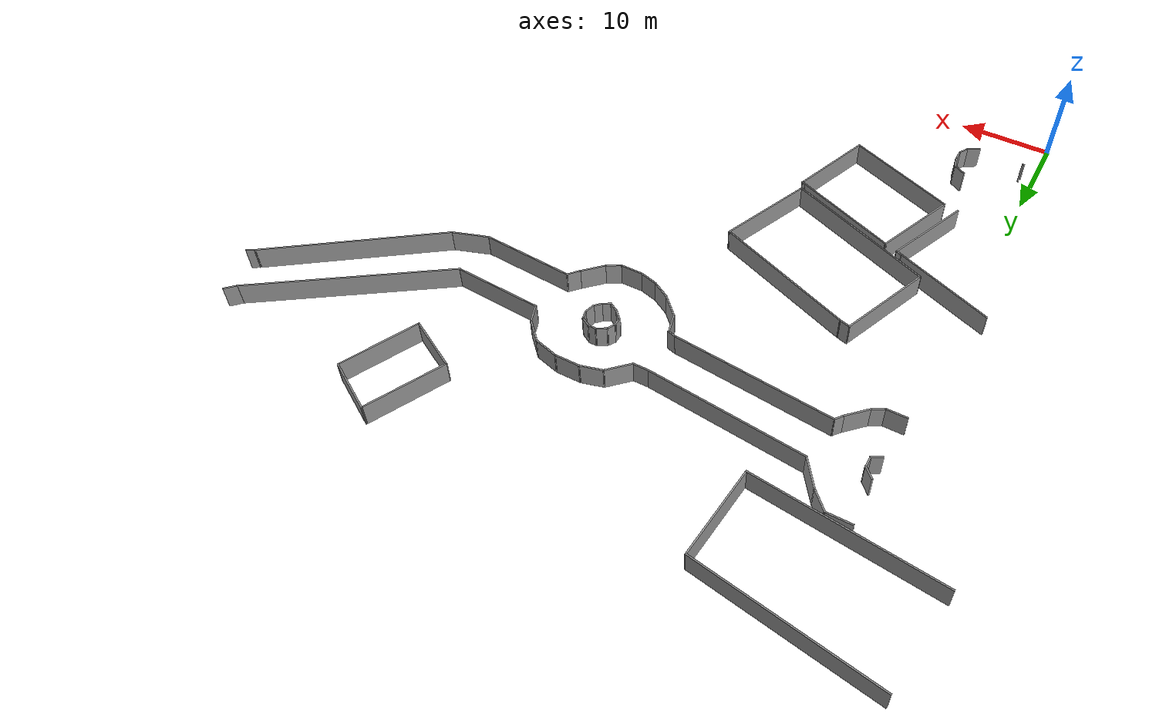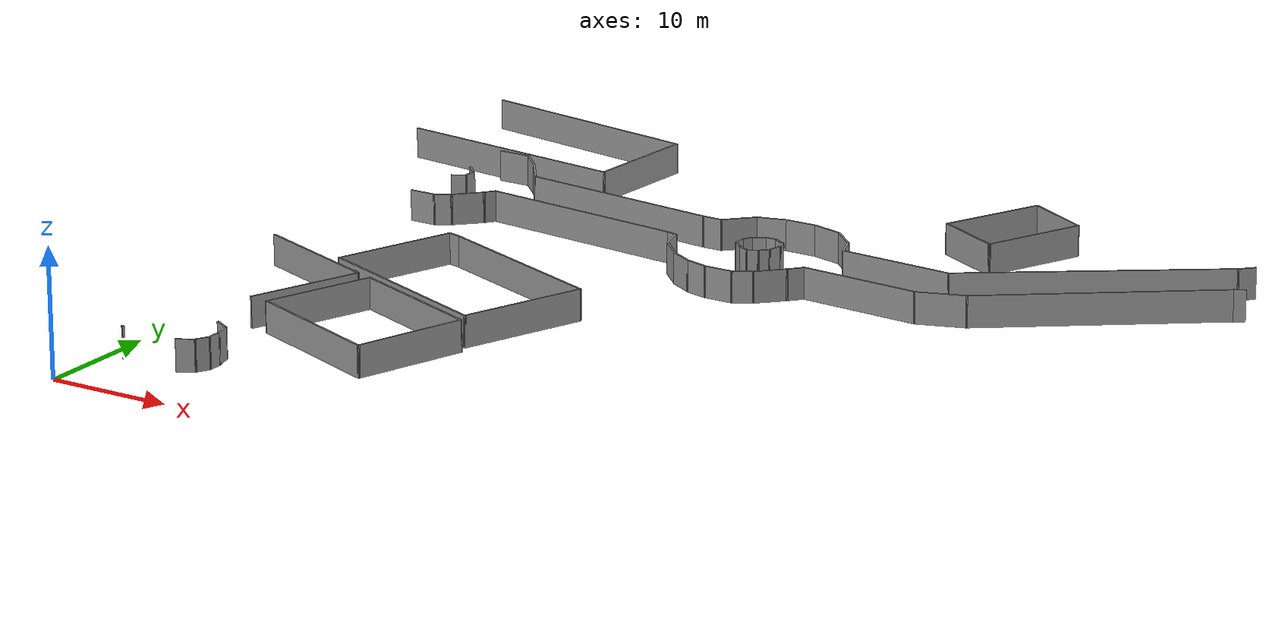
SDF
<sdf version="1.6">
 <model name="palazzo2">
  <pose>-3.81107 -3.99805 0 0 -0 0</pose>
  <link name="Wall_1">
   <collision name="Wall_1_Collision">
    <geometry><box><size>1.5 0.15 2.5</size></box></geometry>
    <pose>0 0 1.25 0 -0 0</pose>
   </collision>
   <visual name="Wall_1_Visual">
    <pose>0 0 1.25 0 -0 0</pose>
    <geometry><box><size>1.5 0.15 2.5</size></box></geometry>
    <material>
     <script><uri>file://media/materials/scripts/gazebo.material</uri><name>Gazebo/Grey</name></script>
     <ambient>1 1 1 1</ambient>
    </material>
    <meta><layer>0</layer></meta>
   </visual>
   <pose>68.1139 65.5916 0 0 -0 -2.35619</pose>
  </link>
  <link name="Wall_100">
   <collision name="Wall_100_Collision">
    <geometry><box><size>1.5 0.15 2.5</size></box></geometry>
    <pose>0 0 1.25 0 -0 0</pose>
   </collision>
   <visual name="Wall_100_Visual">
    <pose>0 0 1.25 0 -0 0</pose>
    <geometry><box><size>1.5 0.15 2.5</size></box></geometry>
    <material>
     <script><uri>file://media/materials/scripts/gazebo.material</uri><name>Gazebo/Grey</name></script>
     <ambient>1 1 1 1</ambient>
    </material>
    <meta><layer>0</layer></meta>
   </visual>
   <pose>4.68181 55.6213 0 0 -0 -0.785398</pose>
  </link>
  <link name="Wall_101">
   <collision name="Wall_101_Collision">
    <geometry><box><size>1.25 0.15 2.5</size></box></geometry>
    <pose>0 0 1.25 0 -0 0</pose>
   </collision>
   <visual name="Wall_101_Visual">
    <pose>0 0 1.25 0 -0 0</pose>
    <geometry><box><size>1.25 0.15 2.5</size></box></geometry>
    <material>
     <script><uri>file://media/materials/scripts/gazebo.material</uri><name>Gazebo/Grey</name></script>
     <ambient>1 1 1 1</ambient>
    </material>
    <meta><layer>0</layer></meta>
   </visual>
   <pose>5.15911 54.594 0 0 -0 -1.5708</pose>
  </link>
  <link name="Wall_102">
   <collision name="Wall_102_Collision">
    <geometry><box><size>1.25 0.15 2.5</size></box></geometry>
    <pose>0 0 1.25 0 -0 0</pose>
   </collision>
   <visual name="Wall_102_Visual">
    <pose>0 0 1.25 0 -0 0</pose>
    <geometry><box><size>1.25 0.15 2.5</size></box></geometry>
    <material>
     <script><uri>file://media/materials/scripts/gazebo.material</uri><name>Gazebo/Grey</name></script>
     <ambient>1 1 1 1</ambient>
    </material>
    <meta><layer>0</layer></meta>
   </visual>
   <pose>4.68279 53.769 0 0 -0 -2.61799</pose>
  </link>
  <link name="Wall_124">
   <collision name="Wall_124_Collision">
    <geometry><box><size>1.5 0.15 2.5</size></box></geometry>
    <pose>0 0 1.25 0 -0 0</pose>
   </collision>
   <visual name="Wall_124_Visual">
    <pose>0 0 1.25 0 -0 0</pose>
    <geometry><box><size>1.5 0.15 2.5</size></box></geometry>
    <material>
     <script><uri>file://media/materials/scripts/gazebo.material</uri><name>Gazebo/Grey</name></script>
     <ambient>1 1 1 1</ambient>
    </material>
    <meta><layer>0</layer></meta>
   </visual>
   <pose>11.0494 14.3562 0 0 -0 -0.523599</pose>
  </link>
  <link name="Wall_125">
   <collision name="Wall_125_Collision">
    <geometry><box><size>1.5 0.15 2.5</size></box></geometry>
    <pose>0 0 1.25 0 -0 0</pose>
   </collision>
   <visual name="Wall_125_Visual">
    <pose>0 0 1.25 0 -0 0</pose>
    <geometry><box><size>1.5 0.15 2.5</size></box></geometry>
    <material>
     <script><uri>file://media/materials/scripts/gazebo.material</uri><name>Gazebo/Grey</name></script>
     <ambient>1 1 1 1</ambient>
    </material>
    <meta><layer>0</layer></meta>
   </visual>
   <pose>11.8087 13.3667 0 0 -0 -1.309</pose>
  </link>
  <link name="Wall_126">
   <collision name="Wall_126_Collision">
    <geometry><box><size>1.25 0.15 2.5</size></box></geometry>
    <pose>0 0 1.25 0 -0 0</pose>
   </collision>
   <visual name="Wall_126_Visual">
    <pose>0 0 1.25 0 -0 0</pose>
    <geometry><box><size>1.25 0.15 2.5</size></box></geometry>
    <material>
     <script><uri>file://media/materials/scripts/gazebo.material</uri><name>Gazebo/Grey</name></script>
     <ambient>1 1 1 1</ambient>
    </material>
    <meta><layer>0</layer></meta>
   </visual>
   <pose>11.9834 12.1647 0 0 -0 -1.5708</pose>
  </link>
  <link name="Wall_127">
   <collision name="Wall_127_Collision">
    <geometry><box><size>1.25 0.15 2.5</size></box></geometry>
    <pose>0 0 1.25 0 -0 0</pose>
   </collision>
   <visual name="Wall_127_Visual">
    <pose>0 0 1.25 0 -0 0</pose>
    <geometry><box><size>1.25 0.15 2.5</size></box></geometry>
    <material>
     <script><uri>file://media/materials/scripts/gazebo.material</uri><name>Gazebo/Grey</name></script>
     <ambient>1 1 1 1</ambient>
    </material>
    <meta><layer>0</layer></meta>
   </visual>
   <pose>11.7084 11.1384 0 0 -0 -2.0944</pose>
  </link>
  <link name="Wall_128">
   <collision name="Wall_128_Collision">
    <geometry><box><size>1.5 0.15 2.5</size></box></geometry>
    <pose>0 0 1.25 0 -0 0</pose>
   </collision>
   <visual name="Wall_128_Visual">
    <pose>0 0 1.25 0 -0 0</pose>
    <geometry><box><size>1.5 0.15 2.5</size></box></geometry>
    <material>
     <script><uri>file://media/materials/scripts/gazebo.material</uri><name>Gazebo/Grey</name></script>
     <ambient>1 1 1 1</ambient>
    </material>
    <meta><layer>0</layer></meta>
   </visual>
   <pose>10.8488 10.3245 0 0 -0 -2.61799</pose>
  </link>
  <link name="Wall_18">
   <collision name="Wall_18_Collision">
    <geometry><box><size>9.55157 0.15 2.5</size></box></geometry>
    <pose>0 0 1.25 0 -0 0</pose>
   </collision>
   <visual name="Wall_18_Visual">
    <pose>0 0 1.25 0 -0 0</pose>
    <geometry><box><size>9.55157 0.15 2.5</size></box></geometry>
    <material>
     <script><uri>file://media/materials/scripts/gazebo.material</uri><name>Gazebo/Grey</name></script>
     <ambient>1 1 1 1</ambient>
    </material>
    <meta><layer>0</layer></meta>
   </visual>
   <pose>45.0865 52.931 0 0 -0 -0.058124</pose>
  </link>
  <link name="Wall_21">
   <collision name="Wall_21_Collision">
    <geometry><box><size>4.05836 0.15 2.5</size></box></geometry>
    <pose>0 0 1.25 0 -0 0</pose>
   </collision>
   <visual name="Wall_21_Visual">
    <pose>0 0 1.25 0 -0 0</pose>
    <geometry><box><size>4.05836 0.15 2.5</size></box></geometry>
    <material>
     <script><uri>file://media/materials/scripts/gazebo.material</uri><name>Gazebo/Grey</name></script>
     <ambient>1 1 1 1</ambient>
    </material>
    <meta><layer>0</layer></meta>
   </visual>
   <pose>51.6505 48.1268 0 0 -0 0.326661</pose>
  </link>
  <link name="Wall_23">
   <collision name="Wall_23_Collision">
    <geometry><box><size>9.9805 0.15 2.5</size></box></geometry>
    <pose>0 0 1.25 0 -0 0</pose>
   </collision>
   <visual name="Wall_23_Visual">
    <pose>0 0 1.25 0 -0 0</pose>
    <geometry><box><size>9.9805 0.15 2.5</size></box></geometry>
    <material>
     <script><uri>file://media/materials/scripts/gazebo.material</uri><name>Gazebo/Grey</name></script>
     <ambient>1 1 1 1</ambient>
    </material>
    <meta><layer>0</layer></meta>
   </visual>
   <pose>44.8944 47.8133 0 0 -0 -0.063831</pose>
  </link>
  <link name="Wall_25">
   <collision name="Wall_25_Collision">
    <geometry><box><size>3 0.15 2.5</size></box></geometry>
    <pose>0 0 1.25 0 -0 0</pose>
   </collision>
   <visual name="Wall_25_Visual">
    <pose>0 0 1.25 0 -0 0</pose>
    <geometry><box><size>3 0.15 2.5</size></box></geometry>
    <material>
     <script><uri>file://media/materials/scripts/gazebo.material</uri><name>Gazebo/Grey</name></script>
     <ambient>1 1 1 1</ambient>
    </material>
    <meta><layer>0</layer></meta>
   </visual>
   <pose>29.5276 55.9108 0 0 -0 0.785398</pose>
  </link>
  <link name="Wall_26">
   <collision name="Wall_26_Collision">
    <geometry><box><size>2.5 0.15 2.5</size></box></geometry>
    <pose>0 0 1.25 0 -0 0</pose>
   </collision>
   <visual name="Wall_26_Visual">
    <pose>0 0 1.25 0 -0 0</pose>
    <geometry><box><size>2.5 0.15 2.5</size></box></geometry>
    <material>
     <script><uri>file://media/materials/scripts/gazebo.material</uri><name>Gazebo/Grey</name></script>
     <ambient>1 1 1 1</ambient>
    </material>
    <meta><layer>0</layer></meta>
   </visual>
   <pose>31.6702 57.2225 0 0 -0 0.261799</pose>
  </link>
  <link name="Wall_27">
   <collision name="Wall_27_Collision">
    <geometry><box><size>2.75 0.15 2.5</size></box></geometry>
    <pose>0 0 1.25 0 -0 0</pose>
   </collision>
   <visual name="Wall_27_Visual">
    <pose>0 0 1.25 0 -0 0</pose>
    <geometry><box><size>2.75 0.15 2.5</size></box></geometry>
    <material>
     <script><uri>file://media/materials/scripts/gazebo.material</uri><name>Gazebo/Grey</name></script>
     <ambient>1 1 1 1</ambient>
    </material>
    <meta><layer>0</layer></meta>
   </visual>
   <pose>34.1052 57.5266 0 0 -0 0</pose>
  </link>
  <link name="Wall_28">
   <collision name="Wall_28_Collision">
    <geometry><box><size>2.75 0.15 2.5</size></box></geometry>
    <pose>0 0 1.25 0 -0 0</pose>
   </collision>
   <visual name="Wall_28_Visual">
    <pose>0 0 1.25 0 -0 0</pose>
    <geometry><box><size>2.75 0.15 2.5</size></box></geometry>
    <material>
     <script><uri>file://media/materials/scripts/gazebo.material</uri><name>Gazebo/Grey</name></script>
     <ambient>1 1 1 1</ambient>
    </material>
    <meta><layer>0</layer></meta>
   </visual>
   <pose>36.6609 57.1902 0 0 -0 -0.261799</pose>
  </link>
  <link name="Wall_29">
   <collision name="Wall_29_Collision">
    <geometry><box><size>2.75 0.15 2.5</size></box></geometry>
    <pose>0 0 1.25 0 -0 0</pose>
   </collision>
   <visual name="Wall_29_Visual">
    <pose>0 0 1.25 0 -0 0</pose>
    <geometry><box><size>2.75 0.15 2.5</size></box></geometry>
    <material>
     <script><uri>file://media/materials/scripts/gazebo.material</uri><name>Gazebo/Grey</name></script>
     <ambient>1 1 1 1</ambient>
    </material>
    <meta><layer>0</layer></meta>
   </visual>
   <pose>38.8358 55.9345 0 0 -0 -0.785398</pose>
  </link>
  <link name="Wall_3">
   <collision name="Wall_3_Collision">
    <geometry><box><size>21.9226 0.15 2.5</size></box></geometry>
    <pose>0 0 1.25 0 -0 0</pose>
   </collision>
   <visual name="Wall_3_Visual">
    <pose>0 0 1.25 0 -0 0</pose>
    <geometry><box><size>21.9226 0.15 2.5</size></box></geometry>
    <material>
     <script><uri>file://media/materials/scripts/gazebo.material</uri><name>Gazebo/Grey</name></script>
     <ambient>1 1 1 1</ambient>
    </material>
    <meta><layer>0</layer></meta>
   </visual>
   <pose>58.708 58.8861 0 0 -0 0.609084</pose>
  </link>
  <link name="Wall_30">
   <collision name="Wall_30_Collision">
    <geometry><box><size>2.0705 0.15 2.5</size></box></geometry>
    <pose>0 0 1.25 0 -0 0</pose>
   </collision>
   <visual name="Wall_30_Visual">
    <pose>0 0 1.25 0 -0 0</pose>
    <geometry><box><size>2.0705 0.15 2.5</size></box></geometry>
    <material>
     <script><uri>file://media/materials/scripts/gazebo.material</uri><name>Gazebo/Grey</name></script>
     <ambient>1 1 1 1</ambient>
    </material>
    <meta><layer>0</layer></meta>
   </visual>
   <pose>40.0744 54.1096 0 0 -0 -1.2318</pose>
  </link>
  <link name="Wall_32">
   <collision name="Wall_32_Collision">
    <geometry><box><size>2.25 0.15 2.5</size></box></geometry>
    <pose>0 0 1.25 0 -0 0</pose>
   </collision>
   <visual name="Wall_32_Visual">
    <pose>0 0 1.25 0 -0 0</pose>
    <geometry><box><size>2.25 0.15 2.5</size></box></geometry>
    <material>
     <script><uri>file://media/materials/scripts/gazebo.material</uri><name>Gazebo/Grey</name></script>
     <ambient>1 1 1 1</ambient>
    </material>
    <meta><layer>0</layer></meta>
   </visual>
   <pose>27.7803 48.832 0 0 -0 -1.309</pose>
  </link>
  <link name="Wall_325">
   <collision name="Wall_325_Collision">
    <geometry><box><size>6 0.15 2.5</size></box></geometry>
    <pose>0 0 1.25 0 -0 0</pose>
   </collision>
   <visual name="Wall_325_Visual">
    <pose>0 0 1.25 0 -0 0</pose>
    <geometry><box><size>6 0.15 2.5</size></box></geometry>
    <material>
     <script><uri>file://media/materials/scripts/gazebo.material</uri><name>Gazebo/Grey</name></script>
     <ambient>1 1 1 1</ambient>
    </material>
    <meta><layer>0</layer></meta>
   </visual>
   <pose>50.0012 69.687 0 0 -0 -0.523599</pose>
  </link>
  <link name="Wall_327">
   <collision name="Wall_327_Collision">
    <geometry><box><size>8.8258 0.15 2.5</size></box></geometry>
    <pose>0 0 1.25 0 -0 0</pose>
   </collision>
   <visual name="Wall_327_Visual">
    <pose>0 0 1.25 0 -0 0</pose>
    <geometry><box><size>8.8258 0.15 2.5</size></box></geometry>
    <material>
     <script><uri>file://media/materials/scripts/gazebo.material</uri><name>Gazebo/Grey</name></script>
     <ambient>1 1 1 1</ambient>
    </material>
    <meta><layer>0</layer></meta>
   </visual>
   <pose>45.6102 67.2296 0 0 -0 1.12817</pose>
  </link>
  <link name="Wall_329">
   <collision name="Wall_329_Collision">
    <geometry><box><size>6.08381 0.15 2.5</size></box></geometry>
    <pose>0 0 1.25 0 -0 0</pose>
   </collision>
   <visual name="Wall_329_Visual">
    <pose>0 0 1.25 0 -0 0</pose>
    <geometry><box><size>6.08381 0.15 2.5</size></box></geometry>
    <material>
     <script><uri>file://media/materials/scripts/gazebo.material</uri><name>Gazebo/Grey</name></script>
     <ambient>1 1 1 1</ambient>
    </material>
    <meta><layer>0</layer></meta>
   </visual>
   <pose>46.3654 61.905 0 0 -0 2.64834</pose>
  </link>
  <link name="Wall_33">
   <collision name="Wall_33_Collision">
    <geometry><box><size>2.75 0.15 2.5</size></box></geometry>
    <pose>0 0 1.25 0 -0 0</pose>
   </collision>
   <visual name="Wall_33_Visual">
    <pose>0 0 1.25 0 -0 0</pose>
    <geometry><box><size>2.75 0.15 2.5</size></box></geometry>
    <material>
     <script><uri>file://media/materials/scripts/gazebo.material</uri><name>Gazebo/Grey</name></script>
     <ambient>1 1 1 1</ambient>
    </material>
    <meta><layer>0</layer></meta>
   </visual>
   <pose>28.9713 46.8985 0 0 -0 -0.785398</pose>
  </link>
  <link name="Wall_332">
   <collision name="Wall_332_Collision">
    <geometry><box><size>8.65344 0.15 2.5</size></box></geometry>
    <pose>0 0 1.25 0 -0 0</pose>
   </collision>
   <visual name="Wall_332_Visual">
    <pose>0 0 1.25 0 -0 0</pose>
    <geometry><box><size>8.65344 0.15 2.5</size></box></geometry>
    <material>
     <script><uri>file://media/materials/scripts/gazebo.material</uri><name>Gazebo/Grey</name></script>
     <ambient>1 1 1 1</ambient>
    </material>
    <meta><layer>0</layer></meta>
   </visual>
   <pose>50.7565 64.3623 0 0 -0 1.13939</pose>
  </link>
  <link name="Wall_34">
   <collision name="Wall_34_Collision">
    <geometry><box><size>2.25 0.15 2.5</size></box></geometry>
    <pose>0 0 1.25 0 -0 0</pose>
   </collision>
   <visual name="Wall_34_Visual">
    <pose>0 0 1.25 0 -0 0</pose>
    <geometry><box><size>2.25 0.15 2.5</size></box></geometry>
    <material>
     <script><uri>file://media/materials/scripts/gazebo.material</uri><name>Gazebo/Grey</name></script>
     <ambient>1 1 1 1</ambient>
    </material>
    <meta><layer>0</layer></meta>
   </visual>
   <pose>30.7999 45.4543 0 0 -0 -0.523599</pose>
  </link>
  <link name="Wall_341">
   <collision name="Wall_341_Collision">
    <geometry><box><size>19.8692 0.15 2.5</size></box></geometry>
    <pose>0 0 1.25 0 -0 0</pose>
   </collision>
   <visual name="Wall_341_Visual">
    <pose>0 0 1.25 0 -0 0</pose>
    <geometry><box><size>19.8692 0.15 2.5</size></box></geometry>
    <material>
     <script><uri>file://media/materials/scripts/gazebo.material</uri><name>Gazebo/Grey</name></script>
     <ambient>1 1 1 1</ambient>
    </material>
    <meta><layer>0</layer></meta>
   </visual>
   <pose>4.20985 61.7033 0 0 -0 3.0284</pose>
  </link>
  <link name="Wall_347">
   <collision name="Wall_347_Collision">
    <geometry><box><size>19.517 0.15 2.5</size></box></geometry>
    <pose>0 0 1.25 0 -0 0</pose>
   </collision>
   <visual name="Wall_347_Visual">
    <pose>0 0 1.25 0 -0 0</pose>
    <geometry><box><size>19.517 0.15 2.5</size></box></geometry>
    <material>
     <script><uri>file://media/materials/scripts/gazebo.material</uri><name>Gazebo/Grey</name></script>
     <ambient>1 1 1 1</ambient>
    </material>
    <meta><layer>0</layer></meta>
   </visual>
   <pose>5.20547 71.8202 0 0 -0 2.98006</pose>
  </link>
  <link name="Wall_349">
   <collision name="Wall_349_Collision">
    <geometry><box><size>9.8526 0.15 2.5</size></box></geometry>
    <pose>0 0 1.25 0 -0 0</pose>
   </collision>
   <visual name="Wall_349_Visual">
    <pose>0 0 1.25 0 -0 0</pose>
    <geometry><box><size>9.8526 0.15 2.5</size></box></geometry>
    <material>
     <script><uri>file://media/materials/scripts/gazebo.material</uri><name>Gazebo/Grey</name></script>
     <ambient>1 1 1 1</ambient>
    </material>
    <meta><layer>0</layer></meta>
   </visual>
   <pose>14.3846 65.4262 0 0 -0 1.49274</pose>
  </link>
  <link name="Wall_35">
   <collision name="Wall_35_Collision">
    <geometry><box><size>2 0.15 2.5</size></box></geometry>
    <pose>0 0 1.25 0 -0 0</pose>
   </collision>
   <visual name="Wall_35_Visual">
    <pose>0 0 1.25 0 -0 0</pose>
    <geometry><box><size>2 0.15 2.5</size></box></geometry>
    <material>
     <script><uri>file://media/materials/scripts/gazebo.material</uri><name>Gazebo/Grey</name></script>
     <ambient>1 1 1 1</ambient>
    </material>
    <meta><layer>0</layer></meta>
   </visual>
   <pose>32.6027 44.6899 0 0 -0 -0.261799</pose>
  </link>
  <link name="Wall_36">
   <collision name="Wall_36_Collision">
    <geometry><box><size>2.5 0.15 2.5</size></box></geometry>
    <pose>0 0 1.25 0 -0 0</pose>
   </collision>
   <visual name="Wall_36_Visual">
    <pose>0 0 1.25 0 -0 0</pose>
    <geometry><box><size>2.5 0.15 2.5</size></box></geometry>
    <material>
     <script><uri>file://media/materials/scripts/gazebo.material</uri><name>Gazebo/Grey</name></script>
     <ambient>1 1 1 1</ambient>
    </material>
    <meta><layer>0</layer></meta>
   </visual>
   <pose>34.6712 44.4505 0 0 -0 0</pose>
  </link>
  <link name="Wall_37">
   <collision name="Wall_37_Collision">
    <geometry><box><size>1.75 0.15 2.5</size></box></geometry>
    <pose>0 0 1.25 0 -0 0</pose>
   </collision>
   <visual name="Wall_37_Visual">
    <pose>0 0 1.25 0 -0 0</pose>
    <geometry><box><size>1.75 0.15 2.5</size></box></geometry>
    <material>
     <script><uri>file://media/materials/scripts/gazebo.material</uri><name>Gazebo/Grey</name></script>
     <ambient>1 1 1 1</ambient>
    </material>
    <meta><layer>0</layer></meta>
   </visual>
   <pose>36.539 44.8505 0 0 -0 0.523599</pose>
  </link>
  <link name="Wall_38">
   <collision name="Wall_38_Collision">
    <geometry><box><size>2.75 0.15 2.5</size></box></geometry>
    <pose>0 0 1.25 0 -0 0</pose>
   </collision>
   <visual name="Wall_38_Visual">
    <pose>0 0 1.25 0 -0 0</pose>
    <geometry><box><size>2.75 0.15 2.5</size></box></geometry>
    <material>
     <script><uri>file://media/materials/scripts/gazebo.material</uri><name>Gazebo/Grey</name></script>
     <ambient>1 1 1 1</ambient>
    </material>
    <meta><layer>0</layer></meta>
   </visual>
   <pose>38.1511 46.1697 0 0 -0 0.785398</pose>
  </link>
  <link name="Wall_39">
   <collision name="Wall_39_Collision">
    <geometry><box><size>1.53616 0.15 2.5</size></box></geometry>
    <pose>0 0 1.25 0 -0 0</pose>
   </collision>
   <visual name="Wall_39_Visual">
    <pose>0 0 1.25 0 -0 0</pose>
    <geometry><box><size>1.53616 0.15 2.5</size></box></geometry>
    <material>
     <script><uri>file://media/materials/scripts/gazebo.material</uri><name>Gazebo/Grey</name></script>
     <ambient>1 1 1 1</ambient>
    </material>
    <meta><layer>0</layer></meta>
   </visual>
   <pose>39.5297 47.6079 0 0 -0 0.846182</pose>
  </link>
  <link name="Wall_41">
   <collision name="Wall_41_Collision">
    <geometry><box><size>1 0.15 2.5</size></box></geometry>
    <pose>0 0 1.25 0 -0 0</pose>
   </collision>
   <visual name="Wall_41_Visual">
    <pose>0 0 1.25 0 -0 0</pose>
    <geometry><box><size>1 0.15 2.5</size></box></geometry>
    <material>
     <script><uri>file://media/materials/scripts/gazebo.material</uri><name>Gazebo/Grey</name></script>
     <ambient>1 1 1 1</ambient>
    </material>
    <meta><layer>0</layer></meta>
   </visual>
   <pose>27.0981 49.9562 0 0 -0 2.87979</pose>
  </link>
  <link name="Wall_417">
   <collision name="Wall_417_Collision">
    <geometry><box><size>1.25 0.15 2.5</size></box></geometry>
    <pose>0 0 1.25 0 -0 0</pose>
   </collision>
   <visual name="Wall_417_Visual">
    <pose>0 0 1.25 0 -0 0</pose>
    <geometry><box><size>1.25 0.15 2.5</size></box></geometry>
    <material>
     <script><uri>file://media/materials/scripts/gazebo.material</uri><name>Gazebo/Grey</name></script>
     <ambient>1 1 1 1</ambient>
    </material>
    <meta><layer>0</layer></meta>
   </visual>
   <pose>13.2181 40.7993 0 0 -0 -0.261799</pose>
  </link>
  <link name="Wall_419">
   <collision name="Wall_419_Collision">
    <geometry><box><size>16.0278 0.15 2.5</size></box></geometry>
    <pose>0 0 1.25 0 -0 0</pose>
   </collision>
   <visual name="Wall_419_Visual">
    <pose>0 0 1.25 0 -0 0</pose>
    <geometry><box><size>16.0278 0.15 2.5</size></box></geometry>
    <material>
     <script><uri>file://media/materials/scripts/gazebo.material</uri><name>Gazebo/Grey</name></script>
     <ambient>1 1 1 1</ambient>
    </material>
    <meta><layer>0</layer></meta>
   </visual>
   <pose>21.1487 37.7803 0 0 -0 2.7708</pose>
  </link>
  <link name="Wall_421">
   <collision name="Wall_421_Collision">
    <geometry><box><size>10.4423 0.15 2.5</size></box></geometry>
    <pose>0 0 1.25 0 -0 0</pose>
   </collision>
   <visual name="Wall_421_Visual">
    <pose>0 0 1.25 0 -0 0</pose>
    <geometry><box><size>10.4423 0.15 2.5</size></box></geometry>
    <material>
     <script><uri>file://media/materials/scripts/gazebo.material</uri><name>Gazebo/Grey</name></script>
     <ambient>1 1 1 1</ambient>
    </material>
    <meta><layer>0</layer></meta>
   </visual>
   <pose>26.6706 30.1121 0 0 -0 1.19734</pose>
  </link>
  <link name="Wall_423">
   <collision name="Wall_423_Collision">
    <geometry><box><size>10.2519 0.15 2.5</size></box></geometry>
    <pose>0 0 1.25 0 -0 0</pose>
   </collision>
   <visual name="Wall_423_Visual">
    <pose>0 0 1.25 0 -0 0</pose>
    <geometry><box><size>10.2519 0.15 2.5</size></box></geometry>
    <material>
     <script><uri>file://media/materials/scripts/gazebo.material</uri><name>Gazebo/Grey</name></script>
     <ambient>1 1 1 1</ambient>
    </material>
    <meta><layer>0</layer></meta>
   </visual>
   <pose>10.8916 36.2205 0 0 -0 1.20743</pose>
  </link>
  <link name="Wall_425">
   <collision name="Wall_425_Collision">
    <geometry><box><size>17.0189 0.15 2.5</size></box></geometry>
    <pose>0 0 1.25 0 -0 0</pose>
   </collision>
   <visual name="Wall_425_Visual">
    <pose>0 0 1.25 0 -0 0</pose>
    <geometry><box><size>17.0189 0.15 2.5</size></box></geometry>
    <material>
     <script><uri>file://media/materials/scripts/gazebo.material</uri><name>Gazebo/Grey</name></script>
     <ambient>1 1 1 1</ambient>
    </material>
    <meta><layer>0</layer></meta>
   </visual>
   <pose>16.9447 28.41 0 0 -0 2.76659</pose>
  </link>
  <link name="Wall_427">
   <collision name="Wall_427_Collision">
    <geometry><box><size>0.75 0.15 2.5</size></box></geometry>
    <pose>0 0 1.25 0 -0 0</pose>
   </collision>
   <visual name="Wall_427_Visual">
    <pose>0 0 1.25 0 -0 0</pose>
    <geometry><box><size>0.75 0.15 2.5</size></box></geometry>
    <material>
     <script><uri>file://media/materials/scripts/gazebo.material</uri><name>Gazebo/Grey</name></script>
     <ambient>1 1 1 1</ambient>
    </material>
    <meta><layer>0</layer></meta>
   </visual>
   <pose>12.1757 29.4233 0 0 -0 2.61799</pose>
  </link>
  <link name="Wall_429">
   <collision name="Wall_429_Collision">
    <geometry><box><size>11.8007 0.15 2.5</size></box></geometry>
    <pose>0 0 1.25 0 -0 0</pose>
   </collision>
   <visual name="Wall_429_Visual">
    <pose>0 0 1.25 0 -0 0</pose>
    <geometry><box><size>11.8007 0.15 2.5</size></box></geometry>
    <material>
     <script><uri>file://media/materials/scripts/gazebo.material</uri><name>Gazebo/Grey</name></script>
     <ambient>1 1 1 1</ambient>
    </material>
    <meta><layer>0</layer></meta>
   </visual>
   <pose>7.00663 31.3858 0 0 -0 -0.371093</pose>
  </link>
  <link name="Wall_43">
   <collision name="Wall_43_Collision">
    <geometry><box><size>17.3574 0.15 2.5</size></box></geometry>
    <pose>0 0 1.25 0 -0 0</pose>
   </collision>
   <visual name="Wall_43_Visual">
    <pose>0 0 1.25 0 -0 0</pose>
    <geometry><box><size>17.3574 0.15 2.5</size></box></geometry>
    <material>
     <script><uri>file://media/materials/scripts/gazebo.material</uri><name>Gazebo/Grey</name></script>
     <ambient>1 1 1 1</ambient>
    </material>
    <meta><layer>0</layer></meta>
   </visual>
   <pose>18.127 50.9271 0 0 -0 -0.100234</pose>
  </link>
  <link name="Wall_433">
   <collision name="Wall_433_Collision">
    <geometry><box><size>9.45089 0.15 2.5</size></box></geometry>
    <pose>0 0 1.25 0 -0 0</pose>
   </collision>
   <visual name="Wall_433_Visual">
    <pose>0 0 1.25 0 -0 0</pose>
    <geometry><box><size>9.45089 0.15 2.5</size></box></geometry>
    <material>
     <script><uri>file://media/materials/scripts/gazebo.material</uri><name>Gazebo/Grey</name></script>
     <ambient>1 1 1 1</ambient>
    </material>
    <meta><layer>0</layer></meta>
   </visual>
   <pose>10.7319 24.9461 0 0 -0 1.19573</pose>
  </link>
  <link name="Wall_437">
   <collision name="Wall_437_Collision">
    <geometry><box><size>0.5 0.15 2.5</size></box></geometry>
    <pose>0 0 1.25 0 -0 0</pose>
   </collision>
   <visual name="Wall_437_Visual">
    <pose>0 0 1.25 0 -0 0</pose>
    <geometry><box><size>0.5 0.15 2.5</size></box></geometry>
    <material>
     <script><uri>file://media/materials/scripts/gazebo.material</uri><name>Gazebo/Grey</name></script>
     <ambient>1 1 1 1</ambient>
    </material>
    <meta><layer>0</layer></meta>
   </visual>
   <pose>24.9284 24.4585 0 0 -0 2.61799</pose>
  </link>
  <link name="Wall_439">
   <collision name="Wall_439_Collision">
    <geometry><box><size>12.2613 0.15 2.5</size></box></geometry>
    <pose>0 0 1.25 0 -0 0</pose>
   </collision>
   <visual name="Wall_439_Visual">
    <pose>0 0 1.25 0 -0 0</pose>
    <geometry><box><size>12.2613 0.15 2.5</size></box></geometry>
    <material>
     <script><uri>file://media/materials/scripts/gazebo.material</uri><name>Gazebo/Grey</name></script>
     <ambient>1 1 1 1</ambient>
    </material>
    <meta><layer>0</layer></meta>
   </visual>
   <pose>19.4506 26.603 0 0 -0 -0.377478</pose>
  </link>
  <link name="Wall_441">
   <collision name="Wall_441_Collision">
    <geometry><box><size>9.2331 0.15 2.5</size></box></geometry>
    <pose>0 0 1.25 0 -0 0</pose>
   </collision>
   <visual name="Wall_441_Visual">
    <pose>0 0 1.25 0 -0 0</pose>
    <geometry><box><size>9.2331 0.15 2.5</size></box></geometry>
    <material>
     <script><uri>file://media/materials/scripts/gazebo.material</uri><name>Gazebo/Grey</name></script>
     <ambient>1 1 1 1</ambient>
    </material>
    <meta><layer>0</layer></meta>
   </visual>
   <pose>12.2115 24.5883 0 0 -0 1.20846</pose>
  </link>
  <link name="Wall_443">
   <collision name="Wall_443_Collision">
    <geometry><box><size>9.20126 0.15 2.5</size></box></geometry>
    <pose>0 0 1.25 0 -0 0</pose>
   </collision>
   <visual name="Wall_443_Visual">
    <pose>0 0 1.25 0 -0 0</pose>
    <geometry><box><size>9.20126 0.15 2.5</size></box></geometry>
    <material>
     <script><uri>file://media/materials/scripts/gazebo.material</uri><name>Gazebo/Grey</name></script>
     <ambient>1 1 1 1</ambient>
    </material>
    <meta><layer>0</layer></meta>
   </visual>
   <pose>23.5985 20.0947 0 0 -0 1.23731</pose>
  </link>
  <link name="Wall_445">
   <collision name="Wall_445_Collision">
    <geometry><box><size>12.5219 0.15 2.5</size></box></geometry>
    <pose>0 0 1.25 0 -0 0</pose>
   </collision>
   <visual name="Wall_445_Visual">
    <pose>0 0 1.25 0 -0 0</pose>
    <geometry><box><size>12.5219 0.15 2.5</size></box></geometry>
    <material>
     <script><uri>file://media/materials/scripts/gazebo.material</uri><name>Gazebo/Grey</name></script>
     <ambient>1 1 1 1</ambient>
    </material>
    <meta><layer>0</layer></meta>
   </visual>
   <pose>16.3594 18.08 0 0 -0 -0.374281</pose>
  </link>
  <link name="Wall_45">
   <collision name="Wall_45_Collision">
    <geometry><box><size>1.75 0.15 2.5</size></box></geometry>
    <pose>0 0 1.25 0 -0 0</pose>
   </collision>
   <visual name="Wall_45_Visual">
    <pose>0 0 1.25 0 -0 0</pose>
    <geometry><box><size>1.75 0.15 2.5</size></box></geometry>
    <material>
     <script><uri>file://media/materials/scripts/gazebo.material</uri><name>Gazebo/Grey</name></script>
     <ambient>1 1 1 1</ambient>
    </material>
    <meta><layer>0</layer></meta>
   </visual>
   <pose>27.72 54.9032 0 0 -0 3.14159</pose>
  </link>
  <link name="Wall_47">
   <collision name="Wall_47_Collision">
    <geometry><box><size>17.0714 0.15 2.5</size></box></geometry>
    <pose>0 0 1.25 0 -0 0</pose>
   </collision>
   <visual name="Wall_47_Visual">
    <pose>0 0 1.25 0 -0 0</pose>
    <geometry><box><size>17.0714 0.15 2.5</size></box></geometry>
    <material>
     <script><uri>file://media/materials/scripts/gazebo.material</uri><name>Gazebo/Grey</name></script>
     <ambient>1 1 1 1</ambient>
    </material>
    <meta><layer>0</layer></meta>
   </visual>
   <pose>18.5062 55.7932 0 0 -0 -0.10539</pose>
  </link>
  <link name="Wall_49">
   <collision name="Wall_49_Collision">
    <geometry><box><size>1.25 0.15 2.5</size></box></geometry>
    <pose>0 0 1.25 0 -0 0</pose>
   </collision>
   <visual name="Wall_49_Visual">
    <pose>0 0 1.25 0 -0 0</pose>
    <geometry><box><size>1.25 0.15 2.5</size></box></geometry>
    <material>
     <script><uri>file://media/materials/scripts/gazebo.material</uri><name>Gazebo/Grey</name></script>
     <ambient>1 1 1 1</ambient>
    </material>
    <meta><layer>0</layer></meta>
   </visual>
   <pose>33.3333 52.5974 0 0 -0 -2.61799</pose>
  </link>
  <link name="Wall_5">
   <collision name="Wall_5_Collision">
    <geometry><box><size>1 0.15 2.5</size></box></geometry>
    <pose>0 0 1.25 0 -0 0</pose>
   </collision>
   <visual name="Wall_5_Visual">
    <pose>0 0 1.25 0 -0 0</pose>
    <geometry><box><size>1 0.15 2.5</size></box></geometry>
    <material>
     <script><uri>file://media/materials/scripts/gazebo.material</uri><name>Gazebo/Grey</name></script>
     <ambient>1 1 1 1</ambient>
    </material>
    <meta><layer>0</layer></meta>
   </visual>
   <pose>69.8818 60.6983 0 0 -0 -2.61799</pose>
  </link>
  <link name="Wall_50">
   <collision name="Wall_50_Collision">
    <geometry><box><size>1 0.15 2.5</size></box></geometry>
    <pose>0 0 1.25 0 -0 0</pose>
   </collision>
   <visual name="Wall_50_Visual">
    <pose>0 0 1.25 0 -0 0</pose>
    <geometry><box><size>1 0.15 2.5</size></box></geometry>
    <material>
     <script><uri>file://media/materials/scripts/gazebo.material</uri><name>Gazebo/Grey</name></script>
     <ambient>1 1 1 1</ambient>
    </material>
    <meta><layer>0</layer></meta>
   </visual>
   <pose>32.6444 51.9544 0 0 -0 -2.0944</pose>
  </link>
  <link name="Wall_51">
   <collision name="Wall_51_Collision">
    <geometry><box><size>1 0.15 2.5</size></box></geometry>
    <pose>0 0 1.25 0 -0 0</pose>
   </collision>
   <visual name="Wall_51_Visual">
    <pose>0 0 1.25 0 -0 0</pose>
    <geometry><box><size>1 0.15 2.5</size></box></geometry>
    <material>
     <script><uri>file://media/materials/scripts/gazebo.material</uri><name>Gazebo/Grey</name></script>
     <ambient>1 1 1 1</ambient>
    </material>
    <meta><layer>0</layer></meta>
   </visual>
   <pose>32.4319 51.1613 0 0 -0 -1.5708</pose>
  </link>
  <link name="Wall_52">
   <collision name="Wall_52_Collision">
    <geometry><box><size>1.25 0.15 2.5</size></box></geometry>
    <pose>0 0 1.25 0 -0 0</pose>
   </collision>
   <visual name="Wall_52_Visual">
    <pose>0 0 1.25 0 -0 0</pose>
    <geometry><box><size>1.25 0.15 2.5</size></box></geometry>
    <material>
     <script><uri>file://media/materials/scripts/gazebo.material</uri><name>Gazebo/Grey</name></script>
     <ambient>1 1 1 1</ambient>
    </material>
    <meta><layer>0</layer></meta>
   </visual>
   <pose>32.8209 50.3474 0 0 -0 -0.785398</pose>
  </link>
  <link name="Wall_53">
   <collision name="Wall_53_Collision">
    <geometry><box><size>1.25 0.15 2.5</size></box></geometry>
    <pose>0 0 1.25 0 -0 0</pose>
   </collision>
   <visual name="Wall_53_Visual">
    <pose>0 0 1.25 0 -0 0</pose>
    <geometry><box><size>1.25 0.15 2.5</size></box></geometry>
    <material>
     <script><uri>file://media/materials/scripts/gazebo.material</uri><name>Gazebo/Grey</name></script>
     <ambient>1 1 1 1</ambient>
    </material>
    <meta><layer>0</layer></meta>
   </visual>
   <pose>33.6861 49.6835 0 0 -0 -0.523599</pose>
  </link>
  <link name="Wall_538">
   <collision name="Wall_538_Collision">
    <geometry><box><size>0.25 0.15 2.5</size></box></geometry>
    <pose>0 0 1.25 0 -0 0</pose>
   </collision>
   <visual name="Wall_538_Visual">
    <pose>0 0 1.25 0 -0 0</pose>
    <geometry><box><size>0.25 0.15 2.5</size></box></geometry>
    <material>
     <script><uri>file://media/materials/scripts/gazebo.material</uri><name>Gazebo/Grey</name></script>
     <ambient>1 1 1 1</ambient>
    </material>
    <meta><layer>0</layer></meta>
   </visual>
   <pose>5.24716 10.2198 0 0 -0 -0.523599</pose>
  </link>
  <link name="Wall_54">
   <collision name="Wall_54_Collision">
    <geometry><box><size>1 0.15 2.5</size></box></geometry>
    <pose>0 0 1.25 0 -0 0</pose>
   </collision>
   <visual name="Wall_54_Visual">
    <pose>0 0 1.25 0 -0 0</pose>
    <geometry><box><size>1 0.15 2.5</size></box></geometry>
    <material>
     <script><uri>file://media/materials/scripts/gazebo.material</uri><name>Gazebo/Grey</name></script>
     <ambient>1 1 1 1</ambient>
    </material>
    <meta><layer>0</layer></meta>
   </visual>
   <pose>34.5305 49.621 0 0 -0 0.523599</pose>
  </link>
  <link name="Wall_55">
   <collision name="Wall_55_Collision">
    <geometry><box><size>1 0.15 2.5</size></box></geometry>
    <pose>0 0 1.25 0 -0 0</pose>
   </collision>
   <visual name="Wall_55_Visual">
    <pose>0 0 1.25 0 -0 0</pose>
    <geometry><box><size>1 0.15 2.5</size></box></geometry>
    <material>
     <script><uri>file://media/materials/scripts/gazebo.material</uri><name>Gazebo/Grey</name></script>
     <ambient>1 1 1 1</ambient>
    </material>
    <meta><layer>0</layer></meta>
   </visual>
   <pose>35.199 50.134 0 0 -0 0.785398</pose>
  </link>
  <link name="Wall_56">
   <collision name="Wall_56_Collision">
    <geometry><box><size>1.25 0.15 2.5</size></box></geometry>
    <pose>0 0 1.25 0 -0 0</pose>
   </collision>
   <visual name="Wall_56_Visual">
    <pose>0 0 1.25 0 -0 0</pose>
    <geometry><box><size>1.25 0.15 2.5</size></box></geometry>
    <material>
     <script><uri>file://media/materials/scripts/gazebo.material</uri><name>Gazebo/Grey</name></script>
     <ambient>1 1 1 1</ambient>
    </material>
    <meta><layer>0</layer></meta>
   </visual>
   <pose>35.6419 50.9658 0 0 -0 1.309</pose>
  </link>
  <link name="Wall_57">
   <collision name="Wall_57_Collision">
    <geometry><box><size>1 0.15 2.5</size></box></geometry>
    <pose>0 0 1.25 0 -0 0</pose>
   </collision>
   <visual name="Wall_57_Visual">
    <pose>0 0 1.25 0 -0 0</pose>
    <geometry><box><size>1 0.15 2.5</size></box></geometry>
    <material>
     <script><uri>file://media/materials/scripts/gazebo.material</uri><name>Gazebo/Grey</name></script>
     <ambient>1 1 1 1</ambient>
    </material>
    <meta><layer>0</layer></meta>
   </visual>
   <pose>35.6743 51.9076 0 0 -0 1.8326</pose>
  </link>
  <link name="Wall_58">
   <collision name="Wall_58_Collision">
    <geometry><box><size>1.25 0.15 2.5</size></box></geometry>
    <pose>0 0 1.25 0 -0 0</pose>
   </collision>
   <visual name="Wall_58_Visual">
    <pose>0 0 1.25 0 -0 0</pose>
    <geometry><box><size>1.25 0.15 2.5</size></box></geometry>
    <material>
     <script><uri>file://media/materials/scripts/gazebo.material</uri><name>Gazebo/Grey</name></script>
     <ambient>1 1 1 1</ambient>
    </material>
    <meta><layer>0</layer></meta>
   </visual>
   <pose>35.0879 52.5931 0 0 -0 2.61799</pose>
  </link>
  <link name="Wall_59">
   <collision name="Wall_59_Collision">
    <geometry><box><size>0.952068 0.15 2.5</size></box></geometry>
    <pose>0 0 1.25 0 -0 0</pose>
   </collision>
   <visual name="Wall_59_Visual">
    <pose>0 0 1.25 0 -0 0</pose>
    <geometry><box><size>0.952068 0.15 2.5</size></box></geometry>
    <material>
     <script><uri>file://media/materials/scripts/gazebo.material</uri><name>Gazebo/Grey</name></script>
     <ambient>1 1 1 1</ambient>
    </material>
    <meta><layer>0</layer></meta>
   </visual>
   <pose>34.2106 52.8703 0 0 -0 3.13618</pose>
  </link>
  <link name="Wall_64">
   <collision name="Wall_64_Collision">
    <geometry><box><size>2.75 0.15 2.5</size></box></geometry>
    <pose>0 0 1.25 0 -0 0</pose>
   </collision>
   <visual name="Wall_64_Visual">
    <pose>0 0 1.25 0 -0 0</pose>
    <geometry><box><size>2.75 0.15 2.5</size></box></geometry>
    <material>
     <script><uri>file://media/materials/scripts/gazebo.material</uri><name>Gazebo/Grey</name></script>
     <ambient>1 1 1 1</ambient>
    </material>
    <meta><layer>0</layer></meta>
   </visual>
   <pose>5.12462 61.093 0 0 -0 0</pose>
  </link>
  <link name="Wall_65">
   <collision name="Wall_65_Collision">
    <geometry><box><size>2.5 0.15 2.5</size></box></geometry>
    <pose>0 0 1.25 0 -0 0</pose>
   </collision>
   <visual name="Wall_65_Visual">
    <pose>0 0 1.25 0 -0 0</pose>
    <geometry><box><size>2.5 0.15 2.5</size></box></geometry>
    <material>
     <script><uri>file://media/materials/scripts/gazebo.material</uri><name>Gazebo/Grey</name></script>
     <ambient>1 1 1 1</ambient>
    </material>
    <meta><layer>0</layer></meta>
   </visual>
   <pose>7.25547 60.2621 0 0 -0 -0.785398</pose>
  </link>
  <link name="Wall_66">
   <collision name="Wall_66_Collision">
    <geometry><box><size>3.55243 0.15 2.5</size></box></geometry>
    <pose>0 0 1.25 0 -0 0</pose>
   </collision>
   <visual name="Wall_66_Visual">
    <pose>0 0 1.25 0 -0 0</pose>
    <geometry><box><size>3.55243 0.15 2.5</size></box></geometry>
    <material>
     <script><uri>file://media/materials/scripts/gazebo.material</uri><name>Gazebo/Grey</name></script>
     <ambient>1 1 1 1</ambient>
    </material>
    <meta><layer>0</layer></meta>
   </visual>
   <pose>9.08939 58.0572 0 0 -0 -0.940207</pose>
  </link>
  <link name="Wall_68">
   <collision name="Wall_68_Collision">
    <geometry><box><size>2.25 0.15 2.5</size></box></geometry>
    <pose>0 0 1.25 0 -0 0</pose>
   </collision>
   <visual name="Wall_68_Visual">
    <pose>0 0 1.25 0 -0 0</pose>
    <geometry><box><size>2.25 0.15 2.5</size></box></geometry>
    <material>
     <script><uri>file://media/materials/scripts/gazebo.material</uri><name>Gazebo/Grey</name></script>
     <ambient>1 1 1 1</ambient>
    </material>
    <meta><layer>0</layer></meta>
   </visual>
   <pose>4.91129 48.4968 0 0 -0 0</pose>
  </link>
  <link name="Wall_69">
   <collision name="Wall_69_Collision">
    <geometry><box><size>1.5 0.15 2.5</size></box></geometry>
    <pose>0 0 1.25 0 -0 0</pose>
   </collision>
   <visual name="Wall_69_Visual">
    <pose>0 0 1.25 0 -0 0</pose>
    <geometry><box><size>1.5 0.15 2.5</size></box></geometry>
    <material>
     <script><uri>file://media/materials/scripts/gazebo.material</uri><name>Gazebo/Grey</name></script>
     <ambient>1 1 1 1</ambient>
    </material>
    <meta><layer>0</layer></meta>
   </visual>
   <pose>6.54585 48.8343 0 0 -0 0.523599</pose>
  </link>
  <link name="Wall_70">
   <collision name="Wall_70_Collision">
    <geometry><box><size>2.75 0.15 2.5</size></box></geometry>
    <pose>0 0 1.25 0 -0 0</pose>
   </collision>
   <visual name="Wall_70_Visual">
    <pose>0 0 1.25 0 -0 0</pose>
    <geometry><box><size>2.75 0.15 2.5</size></box></geometry>
    <material>
     <script><uri>file://media/materials/scripts/gazebo.material</uri><name>Gazebo/Grey</name></script>
     <ambient>1 1 1 1</ambient>
    </material>
    <meta><layer>0</layer></meta>
   </visual>
   <pose>8.04966 50.0911 0 0 -0 0.785398</pose>
  </link>
  <link name="Wall_71">
   <collision name="Wall_71_Collision">
    <geometry><box><size>1.13088 0.15 2.5</size></box></geometry>
    <pose>0 0 1.25 0 -0 0</pose>
   </collision>
   <visual name="Wall_71_Visual">
    <pose>0 0 1.25 0 -0 0</pose>
    <geometry><box><size>1.13088 0.15 2.5</size></box></geometry>
    <material>
     <script><uri>file://media/materials/scripts/gazebo.material</uri><name>Gazebo/Grey</name></script>
     <ambient>1 1 1 1</ambient>
    </material>
    <meta><layer>0</layer></meta>
   </visual>
   <pose>9.26772 51.3992 0 0 -0 0.915623</pose>
  </link>
  <link name="Wall_8">
   <collision name="Wall_8_Collision">
    <geometry><box><size>20.0004 0.15 2.5</size></box></geometry>
    <pose>0 0 1.25 0 -0 0</pose>
   </collision>
   <visual name="Wall_8_Visual">
    <pose>0 0 1.25 0 -0 0</pose>
    <geometry><box><size>20.0004 0.15 2.5</size></box></geometry>
    <material>
     <script><uri>file://media/materials/scripts/gazebo.material</uri><name>Gazebo/Grey</name></script>
     <ambient>1 1 1 1</ambient>
    </material>
    <meta><layer>0</layer></meta>
   </visual>
   <pose>61.5075 54.6199 0 0 -0 0.632319</pose>
  </link>
  <static>1</static>
 </model>
</sdf>
